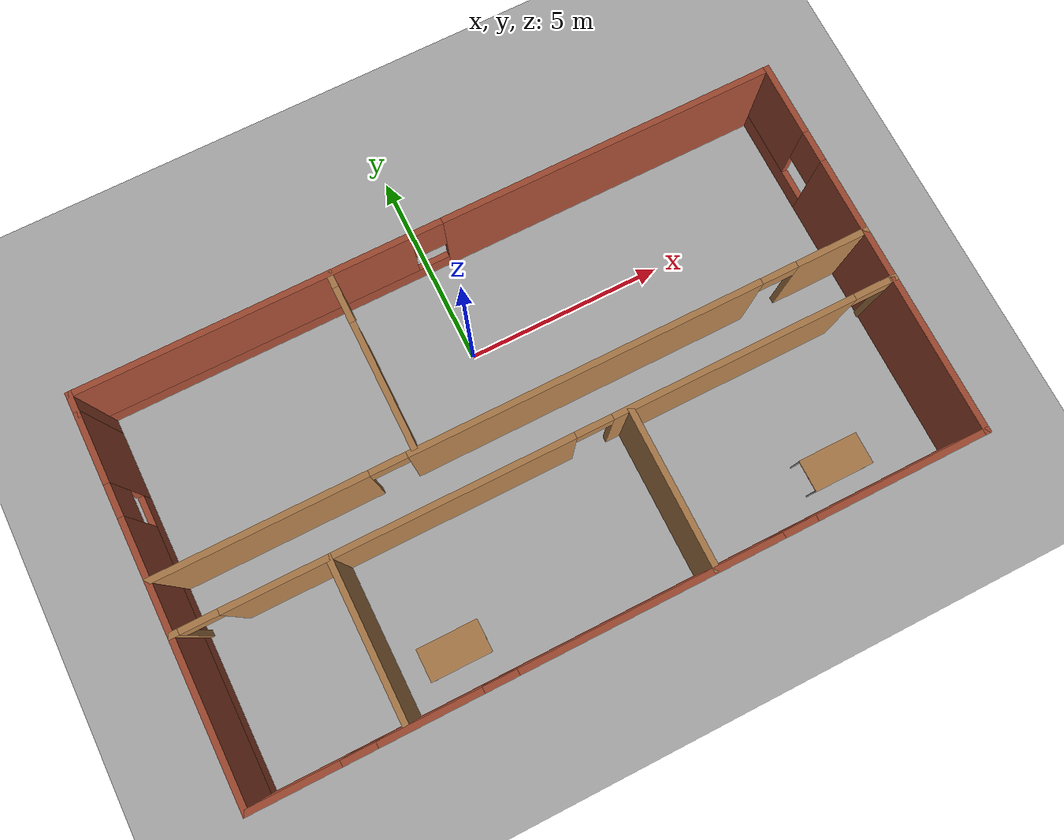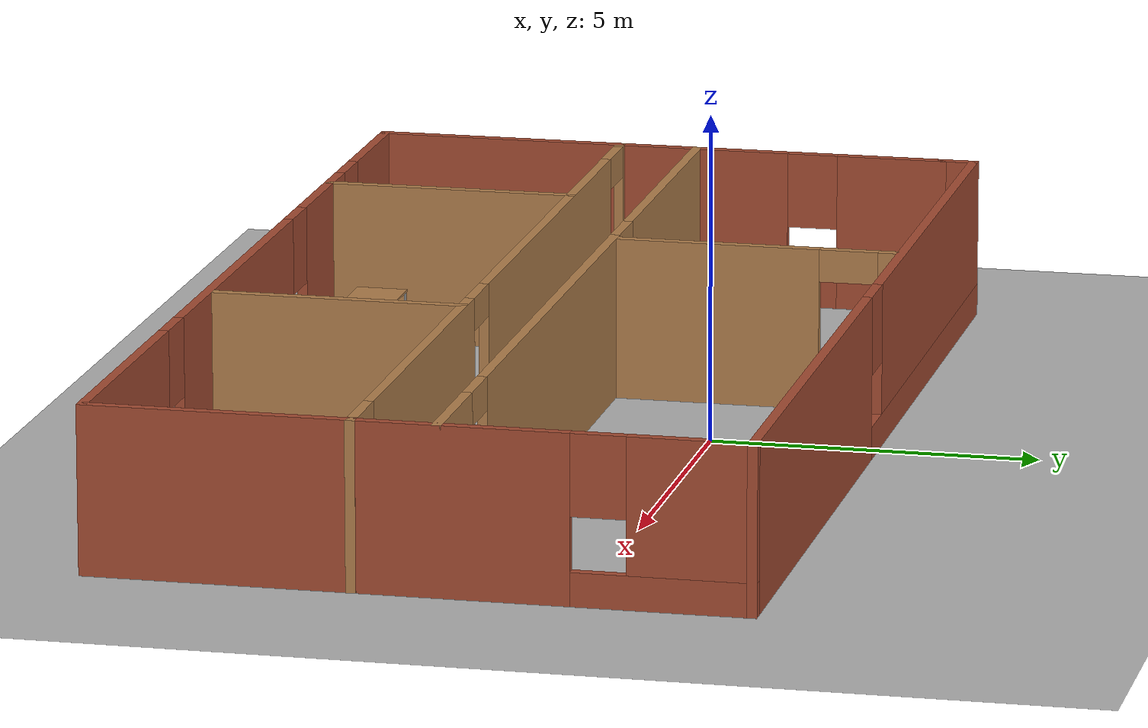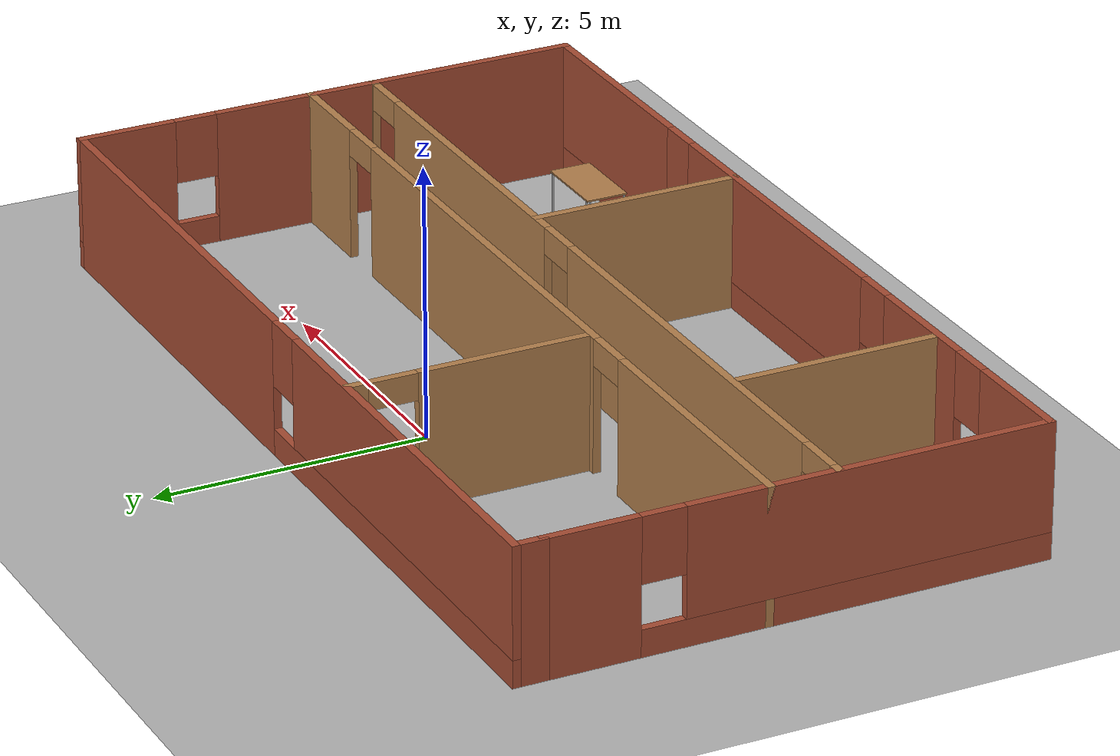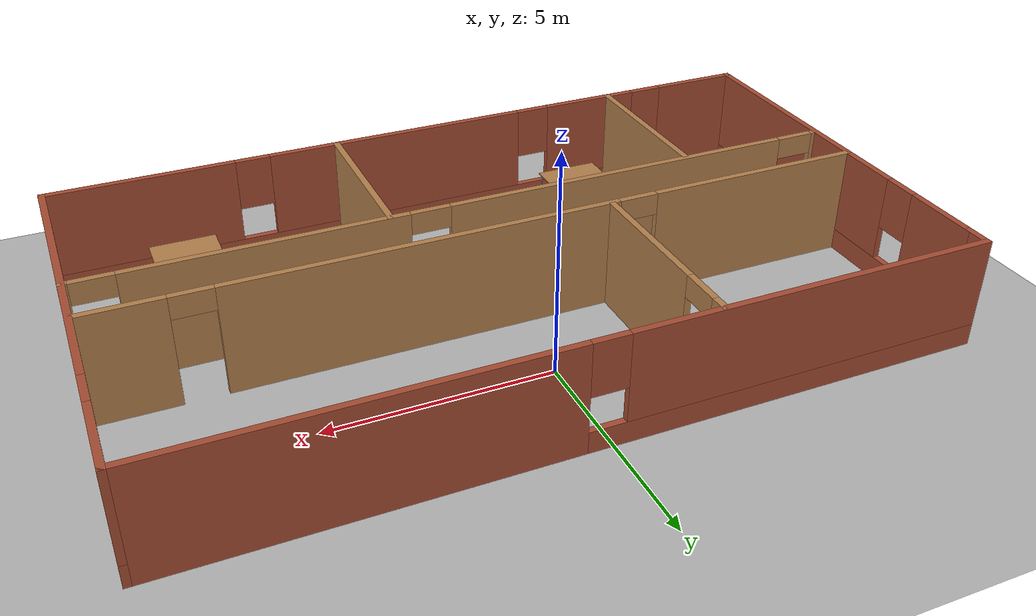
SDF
<sdf version="1.9">
 <world name="default">
  <gravity>0 0 -9.8</gravity>
  <magnetic_field>6e-06 2.3e-05 -4.2e-05</magnetic_field>
  <atmosphere type="adiabatic"/>
  <physics type="ode">
   <max_step_size>0.001</max_step_size>
   <real_time_factor>1</real_time_factor>
   <real_time_update_rate>1000</real_time_update_rate>
  </physics>
  <scene><ambient>0.4 0.4 0.4 1</ambient><background>0.7 0.7 0.7 1</background><shadows>true</shadows></scene>
  <model name="my_world3">
   <pose>0.267042 -2.318 0 0 -0 0</pose>
   <link name="Wall_28">
    <pose>-8.67704 -0.25 0 0 0 -1.5708</pose>
    <visual name="Wall_28_Visual_0">
     <pose>-3.7465 0 1.25 0 -0 0</pose>
     <geometry><box><size>1.75701 0.15 2.5</size></box></geometry>
     <material>
      <script><uri>file://media/materials/scripts/gazebo.material</uri><name>Gazebo/Bricks</name></script>
      <ambient>1 1 1 1</ambient>
     </material>
     <meta><layer>0</layer></meta>
    </visual>
    <collision name="Wall_28_Collision_0">
     <geometry><box><size>1.75701 0.15 2.5</size></box></geometry>
     <pose>-3.7465 0 1.25 0 -0 0</pose>
    </collision>
    <visual name="Wall_28_Visual_1">
     <pose>0.878504 0 0.25 0 -0 0</pose>
     <geometry><box><size>7.49299 0.15 0.5</size></box></geometry>
     <material>
      <script><uri>file://media/materials/scripts/gazebo.material</uri><name>Gazebo/Bricks</name></script>
      <ambient>1 1 1 1</ambient>
     </material>
     <meta><layer>0</layer></meta>
    </visual>
    <collision name="Wall_28_Collision_1">
     <geometry><box><size>7.49299 0.15 0.5</size></box></geometry>
     <pose>0.878504 0 0.25 0 -0 0</pose>
    </collision>
    <visual name="Wall_28_Visual_2">
     <pose>1.2785 0 1.5 0 -0 0</pose>
     <geometry><box><size>6.69299 0.15 2</size></box></geometry>
     <material>
      <script><uri>file://media/materials/scripts/gazebo.material</uri><name>Gazebo/Bricks</name></script>
      <ambient>1 1 1 1</ambient>
     </material>
     <meta><layer>0</layer></meta>
    </visual>
    <collision name="Wall_28_Collision_2">
     <geometry><box><size>6.69299 0.15 2</size></box></geometry>
     <pose>1.2785 0 1.5 0 -0 0</pose>
    </collision>
    <visual name="Wall_28_Visual_3">
     <pose>-2.46799 0 1.9 0 -0 0</pose>
     <geometry><box><size>0.8 0.15 1.2</size></box></geometry>
     <material>
      <script><uri>file://media/materials/scripts/gazebo.material</uri><name>Gazebo/Bricks</name></script>
      <ambient>1 1 1 1</ambient>
     </material>
     <meta><layer>0</layer></meta>
    </visual>
    <collision name="Wall_28_Collision_3">
     <geometry><box><size>0.8 0.15 1.2</size></box></geometry>
     <pose>-2.46799 0 1.9 0 -0 0</pose>
    </collision>
    <inertial>
     <mass>1</mass>
     <inertia><ixx>1</ixx><ixy>0</ixy><ixz>0</ixz><iyy>1</iyy><iyz>0</iyz><izz>1</izz></inertia>
    </inertial>
   </link>
   <link name="Wall_29">
    <pose>-0.002042 -4.8 0 0 -0 0</pose>
    <visual name="Wall_29_Visual_0">
     <pose>-7.66342 0 1.25 0 -0 0</pose>
     <geometry><box><size>2.17317 0.15 2.5</size></box></geometry>
     <material>
      <script><uri>file://media/materials/scripts/gazebo.material</uri><name>Gazebo/Bricks</name></script>
      <ambient>1 1 1 1</ambient>
     </material>
     <meta><layer>0</layer></meta>
    </visual>
    <collision name="Wall_29_Collision_0">
     <geometry><box><size>2.17317 0.15 2.5</size></box></geometry>
     <pose>-7.66342 0 1.25 0 -0 0</pose>
    </collision>
    <visual name="Wall_29_Visual_1">
     <pose>1.08658 0 0.25 0 -0 0</pose>
     <geometry><box><size>15.3268 0.15 0.5</size></box></geometry>
     <material>
      <script><uri>file://media/materials/scripts/gazebo.material</uri><name>Gazebo/Bricks</name></script>
      <ambient>1 1 1 1</ambient>
     </material>
     <meta><layer>0</layer></meta>
    </visual>
    <collision name="Wall_29_Collision_1">
     <geometry><box><size>15.3268 0.15 0.5</size></box></geometry>
     <pose>1.08658 0 0.25 0 -0 0</pose>
    </collision>
    <visual name="Wall_29_Visual_2">
     <pose>-4.58116 0 1.5 0 -0 0</pose>
     <geometry><box><size>2.39135 0.15 2</size></box></geometry>
     <material>
      <script><uri>file://media/materials/scripts/gazebo.material</uri><name>Gazebo/Bricks</name></script>
      <ambient>1 1 1 1</ambient>
     </material>
     <meta><layer>0</layer></meta>
    </visual>
    <collision name="Wall_29_Collision_2">
     <geometry><box><size>2.39135 0.15 2</size></box></geometry>
     <pose>-4.58116 0 1.5 0 -0 0</pose>
    </collision>
    <visual name="Wall_29_Visual_3">
     <pose>0.5411 0 1.5 0 -0 0</pose>
     <geometry><box><size>6.25316 0.15 2</size></box></geometry>
     <material>
      <script><uri>file://media/materials/scripts/gazebo.material</uri><name>Gazebo/Bricks</name></script>
      <ambient>1 1 1 1</ambient>
     </material>
     <meta><layer>0</layer></meta>
    </visual>
    <collision name="Wall_29_Collision_3">
     <geometry><box><size>6.25316 0.15 2</size></box></geometry>
     <pose>0.5411 0 1.5 0 -0 0</pose>
    </collision>
    <visual name="Wall_29_Visual_4">
     <pose>6.60884 0 1.5 0 -0 0</pose>
     <geometry><box><size>4.28232 0.15 2</size></box></geometry>
     <material>
      <script><uri>file://media/materials/scripts/gazebo.material</uri><name>Gazebo/Bricks</name></script>
      <ambient>1 1 1 1</ambient>
     </material>
     <meta><layer>0</layer></meta>
    </visual>
    <collision name="Wall_29_Collision_4">
     <geometry><box><size>4.28232 0.15 2</size></box></geometry>
     <pose>6.60884 0 1.5 0 -0 0</pose>
    </collision>
    <visual name="Wall_29_Visual_5">
     <pose>-6.17683 0 1.9 0 -0 0</pose>
     <geometry><box><size>0.8 0.15 1.2</size></box></geometry>
     <material>
      <script><uri>file://media/materials/scripts/gazebo.material</uri><name>Gazebo/Bricks</name></script>
      <ambient>1 1 1 1</ambient>
     </material>
     <meta><layer>0</layer></meta>
    </visual>
    <collision name="Wall_29_Collision_5">
     <geometry><box><size>0.8 0.15 1.2</size></box></geometry>
     <pose>-6.17683 0 1.9 0 -0 0</pose>
    </collision>
    <visual name="Wall_29_Visual_6">
     <pose>-2.98548 0 1.9 0 -0 0</pose>
     <geometry><box><size>0.8 0.15 1.2</size></box></geometry>
     <material>
      <script><uri>file://media/materials/scripts/gazebo.material</uri><name>Gazebo/Bricks</name></script>
      <ambient>1 1 1 1</ambient>
     </material>
     <meta><layer>0</layer></meta>
    </visual>
    <collision name="Wall_29_Collision_6">
     <geometry><box><size>0.8 0.15 1.2</size></box></geometry>
     <pose>-2.98548 0 1.9 0 -0 0</pose>
    </collision>
    <visual name="Wall_29_Visual_7">
     <pose>4.06768 0 1.9 0 -0 0</pose>
     <geometry><box><size>0.8 0.15 1.2</size></box></geometry>
     <material>
      <script><uri>file://media/materials/scripts/gazebo.material</uri><name>Gazebo/Bricks</name></script>
      <ambient>1 1 1 1</ambient>
     </material>
     <meta><layer>0</layer></meta>
    </visual>
    <collision name="Wall_29_Collision_7">
     <geometry><box><size>0.8 0.15 1.2</size></box></geometry>
     <pose>4.06768 0 1.9 0 -0 0</pose>
    </collision>
    <inertial>
     <mass>1</mass>
     <inertia><ixx>1</ixx><ixy>0</ixy><ixz>0</ixz><iyy>1</iyy><iyz>0</iyz><izz>1</izz></inertia>
    </inertial>
   </link>
   <link name="Wall_30">
    <pose>8.67296 0 0 0 -0 1.5708</pose>
    <visual name="Wall_30_Visual_0">
     <pose>-1.32737 0 1.25 0 -0 0</pose>
     <geometry><box><size>7.09526 0.15 2.5</size></box></geometry>
     <material>
      <script><uri>file://media/materials/scripts/gazebo.material</uri><name>Gazebo/Bricks</name></script>
      <ambient>1 1 1 1</ambient>
     </material>
     <meta><layer>0</layer></meta>
    </visual>
    <collision name="Wall_30_Collision_0">
     <geometry><box><size>7.09526 0.15 2.5</size></box></geometry>
     <pose>-1.32737 0 1.25 0 -0 0</pose>
    </collision>
    <visual name="Wall_30_Visual_1">
     <pose>3.54763 0 0.25 0 -0 0</pose>
     <geometry><box><size>2.65474 0.15 0.5</size></box></geometry>
     <material>
      <script><uri>file://media/materials/scripts/gazebo.material</uri><name>Gazebo/Bricks</name></script>
      <ambient>1 1 1 1</ambient>
     </material>
     <meta><layer>0</layer></meta>
    </visual>
    <collision name="Wall_30_Collision_1">
     <geometry><box><size>2.65474 0.15 0.5</size></box></geometry>
     <pose>3.54763 0 0.25 0 -0 0</pose>
    </collision>
    <visual name="Wall_30_Visual_2">
     <pose>3.94763 0 1.5 0 -0 0</pose>
     <geometry><box><size>1.85474 0.15 2</size></box></geometry>
     <material>
      <script><uri>file://media/materials/scripts/gazebo.material</uri><name>Gazebo/Bricks</name></script>
      <ambient>1 1 1 1</ambient>
     </material>
     <meta><layer>0</layer></meta>
    </visual>
    <collision name="Wall_30_Collision_2">
     <geometry><box><size>1.85474 0.15 2</size></box></geometry>
     <pose>3.94763 0 1.5 0 -0 0</pose>
    </collision>
    <visual name="Wall_30_Visual_3">
     <pose>2.62026 0 1.9 0 -0 0</pose>
     <geometry><box><size>0.8 0.15 1.2</size></box></geometry>
     <material>
      <script><uri>file://media/materials/scripts/gazebo.material</uri><name>Gazebo/Bricks</name></script>
      <ambient>1 1 1 1</ambient>
     </material>
     <meta><layer>0</layer></meta>
    </visual>
    <collision name="Wall_30_Collision_3">
     <geometry><box><size>0.8 0.15 1.2</size></box></geometry>
     <pose>2.62026 0 1.9 0 -0 0</pose>
    </collision>
    <inertial>
     <mass>1</mass>
     <inertia><ixx>1</ixx><ixy>0</ixy><ixz>0</ixz><iyy>1</iyy><iyz>0</iyz><izz>1</izz></inertia>
    </inertial>
   </link>
   <link name="Wall_31">
    <pose>-0.002042 4.8 0 0 -0 3.14159</pose>
    <visual name="Wall_31_Visual_0">
     <pose>-4.51703 0 1.25 0 -0 0</pose>
     <geometry><box><size>8.46594 0.15 2.5</size></box></geometry>
     <material>
      <script><uri>file://media/materials/scripts/gazebo.material</uri><name>Gazebo/Bricks</name></script>
      <ambient>1 1 1 1</ambient>
     </material>
     <meta><layer>0</layer></meta>
    </visual>
    <collision name="Wall_31_Collision_0">
     <geometry><box><size>8.46594 0.15 2.5</size></box></geometry>
     <pose>-4.51703 0 1.25 0 -0 0</pose>
    </collision>
    <visual name="Wall_31_Visual_1">
     <pose>4.23297 0 0.25 0 -0 0</pose>
     <geometry><box><size>9.03406 0.15 0.5</size></box></geometry>
     <material>
      <script><uri>file://media/materials/scripts/gazebo.material</uri><name>Gazebo/Bricks</name></script>
      <ambient>1 1 1 1</ambient>
     </material>
     <meta><layer>0</layer></meta>
    </visual>
    <collision name="Wall_31_Collision_1">
     <geometry><box><size>9.03406 0.15 0.5</size></box></geometry>
     <pose>4.23297 0 0.25 0 -0 0</pose>
    </collision>
    <visual name="Wall_31_Visual_2">
     <pose>4.63297 0 1.5 0 -0 0</pose>
     <geometry><box><size>8.23406 0.15 2</size></box></geometry>
     <material>
      <script><uri>file://media/materials/scripts/gazebo.material</uri><name>Gazebo/Bricks</name></script>
      <ambient>1 1 1 1</ambient>
     </material>
     <meta><layer>0</layer></meta>
    </visual>
    <collision name="Wall_31_Collision_2">
     <geometry><box><size>8.23406 0.15 2</size></box></geometry>
     <pose>4.63297 0 1.5 0 -0 0</pose>
    </collision>
    <visual name="Wall_31_Visual_3">
     <pose>0.115943 0 1.9 0 -0 0</pose>
     <geometry><box><size>0.8 0.15 1.2</size></box></geometry>
     <material>
      <script><uri>file://media/materials/scripts/gazebo.material</uri><name>Gazebo/Bricks</name></script>
      <ambient>1 1 1 1</ambient>
     </material>
     <meta><layer>0</layer></meta>
    </visual>
    <collision name="Wall_31_Collision_3">
     <geometry><box><size>0.8 0.15 1.2</size></box></geometry>
     <pose>0.115943 0 1.9 0 -0 0</pose>
    </collision>
    <inertial>
     <mass>1</mass>
     <inertia><ixx>1</ixx><ixy>0</ixy><ixz>0</ixz><iyy>1</iyy><iyz>0</iyz><izz>1</izz></inertia>
    </inertial>
   </link>
   <link name="Wall_32">
    <collision name="Wall_32_Collision">
     <geometry><box><size>0.65 0.15 2.5</size></box></geometry>
     <pose>0 0 1.25 0 -0 0</pose>
    </collision>
    <visual name="Wall_32_Visual">
     <pose>0 0 1.25 0 -0 0</pose>
     <geometry><box><size>0.65 0.15 2.5</size></box></geometry>
     <material>
      <script><uri>file://media/materials/scripts/gazebo.material</uri><name>Gazebo/Bricks</name></script>
      <ambient>1 1 1 1</ambient>
     </material>
     <meta><layer>0</layer></meta>
    </visual>
    <pose>-8.67704 4.55 0 0 0 -1.5708</pose>
    <inertial>
     <mass>1</mass>
     <inertia><ixx>1</ixx><ixy>0</ixy><ixz>0</ixz><iyy>1</iyy><iyz>0</iyz><izz>1</izz></inertia>
    </inertial>
   </link>
   <link name="Wall_34">
    <pose>-0.002042 0.321 0 0 -0 0</pose>
    <visual name="Wall_34_Visual_0">
     <pose>-6.17319 0 1.25 0 -0 0</pose>
     <geometry><box><size>5.15361 0.15 2.5</size></box></geometry>
     <material>
      <script><uri>file://media/materials/scripts/gazebo.material</uri><name>Gazebo/Wood</name></script>
      <ambient>1 1 1 1</ambient>
     </material>
     <meta><layer>0</layer></meta>
    </visual>
    <collision name="Wall_34_Collision_0">
     <geometry><box><size>5.15361 0.15 2.5</size></box></geometry>
     <pose>-6.17319 0 1.25 0 -0 0</pose>
    </collision>
    <visual name="Wall_34_Visual_1">
     <pose>1.65405 0 1.25 0 -0 0</pose>
     <geometry><box><size>8.70088 0.15 2.5</size></box></geometry>
     <material>
      <script><uri>file://media/materials/scripts/gazebo.material</uri><name>Gazebo/Wood</name></script>
      <ambient>1 1 1 1</ambient>
     </material>
     <meta><layer>0</layer></meta>
    </visual>
    <collision name="Wall_34_Collision_1">
     <geometry><box><size>8.70088 0.15 2.5</size></box></geometry>
     <pose>1.65405 0 1.25 0 -0 0</pose>
    </collision>
    <visual name="Wall_34_Visual_2">
     <pose>7.82724 0 1.25 0 -0 0</pose>
     <geometry><box><size>1.84551 0.15 2.5</size></box></geometry>
     <material>
      <script><uri>file://media/materials/scripts/gazebo.material</uri><name>Gazebo/Wood</name></script>
      <ambient>1 1 1 1</ambient>
     </material>
     <meta><layer>0</layer></meta>
    </visual>
    <collision name="Wall_34_Collision_2">
     <geometry><box><size>1.84551 0.15 2.5</size></box></geometry>
     <pose>7.82724 0 1.25 0 -0 0</pose>
    </collision>
    <visual name="Wall_34_Visual_3">
     <pose>-3.14639 0 2.25 0 -0 0</pose>
     <geometry><box><size>0.9 0.15 0.5</size></box></geometry>
     <material>
      <script><uri>file://media/materials/scripts/gazebo.material</uri><name>Gazebo/Wood</name></script>
      <ambient>1 1 1 1</ambient>
     </material>
     <meta><layer>0</layer></meta>
    </visual>
    <collision name="Wall_34_Collision_3">
     <geometry><box><size>0.9 0.15 0.5</size></box></geometry>
     <pose>-3.14639 0 2.25 0 -0 0</pose>
    </collision>
    <visual name="Wall_34_Visual_4">
     <pose>6.45449 0 2.25 0 -0 0</pose>
     <geometry><box><size>0.9 0.15 0.5</size></box></geometry>
     <material>
      <script><uri>file://media/materials/scripts/gazebo.material</uri><name>Gazebo/Wood</name></script>
      <ambient>1 1 1 1</ambient>
     </material>
     <meta><layer>0</layer></meta>
    </visual>
    <collision name="Wall_34_Collision_4">
     <geometry><box><size>0.9 0.15 0.5</size></box></geometry>
     <pose>6.45449 0 2.25 0 -0 0</pose>
    </collision>
    <inertial>
     <mass>1</mass>
     <inertia><ixx>1</ixx><ixy>0</ixy><ixz>0</ixz><iyy>1</iyy><iyz>0</iyz><izz>1</izz></inertia>
    </inertial>
   </link>
   <link name="Wall_36">
    <pose>-2.5048 2.59071 0 0 0 -1.5708</pose>
    <visual name="Wall_36_Visual_0">
     <pose>-2.04864 0 1.25 0 -0 0</pose>
     <geometry><box><size>0.402725 0.15 2.5</size></box></geometry>
     <material>
      <script><uri>file://media/materials/scripts/gazebo.material</uri><name>Gazebo/Wood</name></script>
      <ambient>1 1 1 1</ambient>
     </material>
     <meta><layer>0</layer></meta>
    </visual>
    <collision name="Wall_36_Collision_0">
     <geometry><box><size>0.402725 0.15 2.5</size></box></geometry>
     <pose>-2.04864 0 1.25 0 -0 0</pose>
    </collision>
    <visual name="Wall_36_Visual_1">
     <pose>0.651362 0 1.25 0 -0 0</pose>
     <geometry><box><size>3.19727 0.15 2.5</size></box></geometry>
     <material>
      <script><uri>file://media/materials/scripts/gazebo.material</uri><name>Gazebo/Wood</name></script>
      <ambient>1 1 1 1</ambient>
     </material>
     <meta><layer>0</layer></meta>
    </visual>
    <collision name="Wall_36_Collision_1">
     <geometry><box><size>3.19727 0.15 2.5</size></box></geometry>
     <pose>0.651362 0 1.25 0 -0 0</pose>
    </collision>
    <visual name="Wall_36_Visual_2">
     <pose>-1.39728 0 2.25 0 -0 0</pose>
     <geometry><box><size>0.9 0.15 0.5</size></box></geometry>
     <material>
      <script><uri>file://media/materials/scripts/gazebo.material</uri><name>Gazebo/Wood</name></script>
      <ambient>1 1 1 1</ambient>
     </material>
     <meta><layer>0</layer></meta>
    </visual>
    <collision name="Wall_36_Collision_2">
     <geometry><box><size>0.9 0.15 0.5</size></box></geometry>
     <pose>-1.39728 0 2.25 0 -0 0</pose>
    </collision>
    <inertial>
     <mass>1</mass>
     <inertia><ixx>1</ixx><ixy>0</ixy><ixz>0</ixz><iyy>1</iyy><iyz>0</iyz><izz>1</izz></inertia>
    </inertial>
   </link>
   <link name="Wall_40">
    <pose>0.002043 -0.919726 0 0 -0 0</pose>
    <visual name="Wall_40_Visual_0">
     <pose>-8.62909 0 1.25 0 -0 0</pose>
     <geometry><box><size>0.241816 0.15 2.5</size></box></geometry>
     <material>
      <script><uri>file://media/materials/scripts/gazebo.material</uri><name>Gazebo/Wood</name></script>
      <ambient>1 1 1 1</ambient>
     </material>
     <meta><layer>0</layer></meta>
    </visual>
    <collision name="Wall_40_Collision_0">
     <geometry><box><size>0.241816 0.15 2.5</size></box></geometry>
     <pose>-8.62909 0 1.25 0 -0 0</pose>
    </collision>
    <visual name="Wall_40_Visual_1">
     <pose>-3.44547 0 1.25 0 -0 0</pose>
     <geometry><box><size>8.32542 0.15 2.5</size></box></geometry>
     <material>
      <script><uri>file://media/materials/scripts/gazebo.material</uri><name>Gazebo/Wood</name></script>
      <ambient>1 1 1 1</ambient>
     </material>
     <meta><layer>0</layer></meta>
    </visual>
    <collision name="Wall_40_Collision_1">
     <geometry><box><size>8.32542 0.15 2.5</size></box></geometry>
     <pose>-3.44547 0 1.25 0 -0 0</pose>
    </collision>
    <visual name="Wall_40_Visual_2">
     <pose>4.64018 0 1.25 0 -0 0</pose>
     <geometry><box><size>6.04589 0.15 2.5</size></box></geometry>
     <material>
      <script><uri>file://media/materials/scripts/gazebo.material</uri><name>Gazebo/Wood</name></script>
      <ambient>1 1 1 1</ambient>
     </material>
     <meta><layer>0</layer></meta>
    </visual>
    <collision name="Wall_40_Collision_2">
     <geometry><box><size>6.04589 0.15 2.5</size></box></geometry>
     <pose>4.64018 0 1.25 0 -0 0</pose>
    </collision>
    <visual name="Wall_40_Visual_3">
     <pose>8.65656 0 1.25 0 -0 0</pose>
     <geometry><box><size>0.186872 0.15 2.5</size></box></geometry>
     <material>
      <script><uri>file://media/materials/scripts/gazebo.material</uri><name>Gazebo/Wood</name></script>
      <ambient>1 1 1 1</ambient>
     </material>
     <meta><layer>0</layer></meta>
    </visual>
    <collision name="Wall_40_Collision_3">
     <geometry><box><size>0.186872 0.15 2.5</size></box></geometry>
     <pose>8.65656 0 1.25 0 -0 0</pose>
    </collision>
    <visual name="Wall_40_Visual_4">
     <pose>-8.05818 0 2.25 0 -0 0</pose>
     <geometry><box><size>0.9 0.15 0.5</size></box></geometry>
     <material>
      <script><uri>file://media/materials/scripts/gazebo.material</uri><name>Gazebo/Wood</name></script>
      <ambient>1 1 1 1</ambient>
     </material>
     <meta><layer>0</layer></meta>
    </visual>
    <collision name="Wall_40_Collision_4">
     <geometry><box><size>0.9 0.15 0.5</size></box></geometry>
     <pose>-8.05818 0 2.25 0 -0 0</pose>
    </collision>
    <visual name="Wall_40_Visual_5">
     <pose>1.16724 0 2.25 0 -0 0</pose>
     <geometry><box><size>0.9 0.15 0.5</size></box></geometry>
     <material>
      <script><uri>file://media/materials/scripts/gazebo.material</uri><name>Gazebo/Wood</name></script>
      <ambient>1 1 1 1</ambient>
     </material>
     <meta><layer>0</layer></meta>
    </visual>
    <collision name="Wall_40_Collision_5">
     <geometry><box><size>0.9 0.15 0.5</size></box></geometry>
     <pose>1.16724 0 2.25 0 -0 0</pose>
    </collision>
    <visual name="Wall_40_Visual_6">
     <pose>8.11313 0 2.25 0 -0 0</pose>
     <geometry><box><size>0.9 0.15 0.5</size></box></geometry>
     <material>
      <script><uri>file://media/materials/scripts/gazebo.material</uri><name>Gazebo/Wood</name></script>
      <ambient>1 1 1 1</ambient>
     </material>
     <meta><layer>0</layer></meta>
    </visual>
    <collision name="Wall_40_Collision_6">
     <geometry><box><size>0.9 0.15 0.5</size></box></geometry>
     <pose>8.11313 0 2.25 0 -0 0</pose>
    </collision>
    <inertial>
     <mass>1</mass>
     <inertia><ixx>1</ixx><ixy>0</ixy><ixz>0</ixz><iyy>1</iyy><iyz>0</iyz><izz>1</izz></inertia>
    </inertial>
   </link>
   <link name="Wall_42">
    <collision name="Wall_42_Collision">
     <geometry><box><size>4 0.15 2.5</size></box></geometry>
     <pose>0 0 1.25 0 -0 0</pose>
    </collision>
    <visual name="Wall_42_Visual">
     <pose>0 0 1.25 0 -0 0</pose>
     <geometry><box><size>4 0.15 2.5</size></box></geometry>
     <material>
      <script><uri>file://media/materials/scripts/gazebo.material</uri><name>Gazebo/Wood</name></script>
      <ambient>1 1 1 1</ambient>
     </material>
     <meta><layer>0</layer></meta>
    </visual>
    <pose>-5.10615 -2.84473 0 0 0 -1.5708</pose>
    <inertial>
     <mass>1</mass>
     <inertia><ixx>1</ixx><ixy>0</ixy><ixz>0</ixz><iyy>1</iyy><iyz>0</iyz><izz>1</izz></inertia>
    </inertial>
   </link>
   <link name="Wall_45">
    <collision name="Wall_45_Collision">
     <geometry><box><size>4 0.15 2.5</size></box></geometry>
     <pose>0 0 1.25 0 -0 0</pose>
    </collision>
    <visual name="Wall_45_Visual">
     <pose>0 0 1.25 0 -0 0</pose>
     <geometry><box><size>4 0.15 2.5</size></box></geometry>
     <material>
      <script><uri>file://media/materials/scripts/gazebo.material</uri><name>Gazebo/Wood</name></script>
      <ambient>1 1 1 1</ambient>
     </material>
     <meta><layer>0</layer></meta>
    </visual>
    <pose>2.05428 -2.84473 0 0 0 -1.5708</pose>
    <inertial>
     <mass>1</mass>
     <inertia><ixx>1</ixx><ixy>0</ixy><ixz>0</ixz><iyy>1</iyy><iyz>0</iyz><izz>1</izz></inertia>
    </inertial>
   </link>
   <static>true</static>
  </model>
  <model name="ground_plane">
   <static>true</static>
   <link name="link">
    <collision name="collision">
     <geometry><plane><normal>0 0 1</normal><size>100 100</size></plane></geometry>
     <surface><friction><ode><mu>100</mu><mu2>50</mu2></ode></friction></surface>
    </collision>
    <visual name="visual">
     <cast_shadows>false</cast_shadows>
     <geometry><plane><normal>0 0 1</normal><size>100 100</size></plane></geometry>
     <material>
      <ambient>0.3 0.3 0.3 1</ambient>
      <diffuse>0.7 0.7 0.7 1</diffuse>
      <specular>0.01 0.01 0.01 1</specular>
     </material>
    </visual>
    <inertial>
     <mass>1</mass>
     <inertia><ixx>1</ixx><ixy>0</ixy><ixz>0</ixz><iyy>1</iyy><iyz>0</iyz><izz>1</izz></inertia>
    </inertial>
   </link>
   <pose>-2.72416 -5.22519 0 0 -0 0</pose>
  </model>
  <model name="Table">
   <static>true</static>
   <link name="link">
    <collision name="surface">
     <pose>0 0 1.0 0 0 0</pose>
     <geometry><box><size>1.5 0.8 0.03</size></box></geometry>
     <surface><friction><ode><mu>0.59999999999999998</mu><mu2>0.59999999999999998</mu2></ode></friction></surface>
    </collision>
    <visual name="visual1">
     <pose>0 0 1.0 0 0 0</pose>
     <geometry><box><size>1.5 0.8 0.03</size></box></geometry>
     <material>
      <diffuse>1 1 1 1</diffuse>
      <script><uri>file://media/materials/scripts/gazebo.material</uri><name>Gazebo/Wood</name></script>
      <pbr>
       <metal>
        <albedo_map>https://fuel.gazebosim.org/1.0/openrobotics/models/table/4/files/Table_Diffuse.jpg</albedo_map>
       </metal>
      </pbr>
     </material>
    </visual>
    <collision name="front_left_leg">
     <pose>0.68 0.38 0.5 0 0 0</pose>
     <geometry><cylinder><radius>0.02</radius><length>1</length></cylinder></geometry>
    </collision>
    <visual name="front_left_leg">
     <pose>0.68 0.38 0.5 0 0 0</pose>
     <geometry><cylinder><radius>0.02</radius><length>1</length></cylinder></geometry>
     <material>
      <diffuse>0.5 0.5 0.5 1</diffuse>
      <script><uri>file://media/materials/scripts/gazebo.material</uri><name>Gazebo/Grey</name></script>
     </material>
    </visual>
    <collision name="front_right_leg">
     <pose>0.68 -0.38 0.5 0 0 0</pose>
     <geometry><cylinder><radius>0.02</radius><length>1</length></cylinder></geometry>
    </collision>
    <visual name="front_right_leg">
     <pose>0.68 -0.38 0.5 0 0 0</pose>
     <geometry><cylinder><radius>0.02</radius><length>1</length></cylinder></geometry>
     <material>
      <diffuse>0.5 0.5 0.5 1</diffuse>
      <script><uri>file://media/materials/scripts/gazebo.material</uri><name>Gazebo/Grey</name></script>
     </material>
    </visual>
    <collision name="back_right_leg">
     <pose>-0.68 -0.38 0.5 0 0 0</pose>
     <geometry><cylinder><radius>0.02</radius><length>1</length></cylinder></geometry>
    </collision>
    <visual name="back_right_leg">
     <pose>-0.68 -0.38 0.5 0 0 0</pose>
     <geometry><cylinder><radius>0.02</radius><length>1</length></cylinder></geometry>
     <material>
      <diffuse>0.5 0.5 0.5 1</diffuse>
      <script><uri>file://media/materials/scripts/gazebo.material</uri><name>Gazebo/Grey</name></script>
     </material>
    </visual>
    <collision name="back_left_leg">
     <pose>-0.68 0.38 0.5 0 0 0</pose>
     <geometry><cylinder><radius>0.02</radius><length>1</length></cylinder></geometry>
    </collision>
    <visual name="back_left_leg">
     <pose>-0.68 0.38 0.5 0 0 0</pose>
     <geometry><cylinder><radius>0.02</radius><length>1</length></cylinder></geometry>
     <material>
      <diffuse>0.5 0.5 0.5 1</diffuse>
      <script><uri>file://media/materials/scripts/gazebo.material</uri><name>Gazebo/Grey</name></script>
     </material>
    </visual>
    <inertial>
     <mass>1</mass>
     <inertia><ixx>1</ixx><ixy>0</ixy><ixz>0</ixz><iyy>1</iyy><iyz>0</iyz><izz>1</izz></inertia>
    </inertial>
   </link>
   <pose>6.211 -6.2233 0 0 -0 0</pose>
  </model>
  <model name="Table_0">
   <static>true</static>
   <link name="link">
    <collision name="surface">
     <pose>0 0 1.0 0 0 0</pose>
     <geometry><box><size>1.5 0.8 0.03</size></box></geometry>
     <surface><friction><ode><mu>0.59999999999999998</mu><mu2>0.59999999999999998</mu2></ode></friction></surface>
    </collision>
    <visual name="visual1">
     <pose>0 0 1.0 0 0 0</pose>
     <geometry><box><size>1.5 0.8 0.03</size></box></geometry>
     <material>
      <diffuse>1 1 1 1</diffuse>
      <script><uri>file://media/materials/scripts/gazebo.material</uri><name>Gazebo/Wood</name></script>
      <pbr>
       <metal>
        <albedo_map>https://fuel.gazebosim.org/1.0/openrobotics/models/table/4/files/Table_Diffuse.jpg</albedo_map>
       </metal>
      </pbr>
     </material>
    </visual>
    <collision name="front_left_leg">
     <pose>0.68 0.38 0.5 0 0 0</pose>
     <geometry><cylinder><radius>0.02</radius><length>1</length></cylinder></geometry>
    </collision>
    <visual name="front_left_leg">
     <pose>0.68 0.38 0.5 0 0 0</pose>
     <geometry><cylinder><radius>0.02</radius><length>1</length></cylinder></geometry>
     <material>
      <diffuse>0.5 0.5 0.5 1</diffuse>
      <script><uri>file://media/materials/scripts/gazebo.material</uri><name>Gazebo/Grey</name></script>
     </material>
    </visual>
    <collision name="front_right_leg">
     <pose>0.68 -0.38 0.5 0 0 0</pose>
     <geometry><cylinder><radius>0.02</radius><length>1</length></cylinder></geometry>
    </collision>
    <visual name="front_right_leg">
     <pose>0.68 -0.38 0.5 0 0 0</pose>
     <geometry><cylinder><radius>0.02</radius><length>1</length></cylinder></geometry>
     <material>
      <diffuse>0.5 0.5 0.5 1</diffuse>
      <script><uri>file://media/materials/scripts/gazebo.material</uri><name>Gazebo/Grey</name></script>
     </material>
    </visual>
    <collision name="back_right_leg">
     <pose>-0.68 -0.38 0.5 0 0 0</pose>
     <geometry><cylinder><radius>0.02</radius><length>1</length></cylinder></geometry>
    </collision>
    <visual name="back_right_leg">
     <pose>-0.68 -0.38 0.5 0 0 0</pose>
     <geometry><cylinder><radius>0.02</radius><length>1</length></cylinder></geometry>
     <material>
      <diffuse>0.5 0.5 0.5 1</diffuse>
      <script><uri>file://media/materials/scripts/gazebo.material</uri><name>Gazebo/Grey</name></script>
     </material>
    </visual>
    <collision name="back_left_leg">
     <pose>-0.68 0.38 0.5 0 0 0</pose>
     <geometry><cylinder><radius>0.02</radius><length>1</length></cylinder></geometry>
    </collision>
    <visual name="back_left_leg">
     <pose>-0.68 0.38 0.5 0 0 0</pose>
     <geometry><cylinder><radius>0.02</radius><length>1</length></cylinder></geometry>
     <material>
      <diffuse>0.5 0.5 0.5 1</diffuse>
      <script><uri>file://media/materials/scripts/gazebo.material</uri><name>Gazebo/Grey</name></script>
     </material>
    </visual>
    <inertial>
     <mass>1</mass>
     <inertia><ixx>1</ixx><ixy>0</ixy><ixz>0</ixz><iyy>1</iyy><iyz>0</iyz><izz>1</izz></inertia>
    </inertial>
   </link>
   <pose>-3.40391 -6.09822 0 0 -0 0</pose>
  </model>
  <light name="sun" type="directional">
   <pose>-6.50182 -5.34676 10 0 -0 0</pose>
   <intensity>1</intensity>
   <direction>-0.5 0.1 -0.9</direction>
   <diffuse>0.8 0.8 0.8 1</diffuse>
   <specular>0.2 0.2 0.2 1</specular>
   <attenuation>
    <range>1000</range>
    <linear>0.01</linear>
    <constant>0.90000000000000002</constant>
    <quadratic>0.001</quadratic>
   </attenuation>
   <spot><inner_angle>0</inner_angle><outer_angle>0</outer_angle><falloff>0</falloff></spot>
  </light>
 </world>
</sdf>
